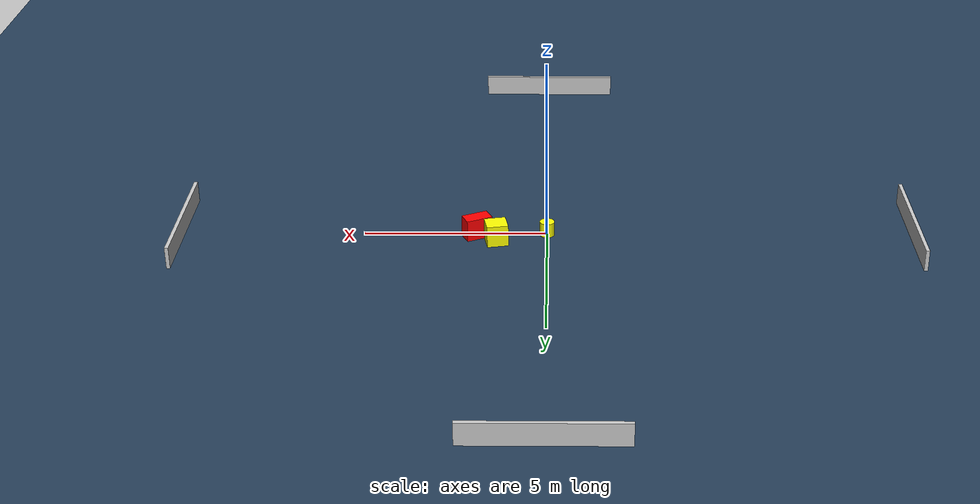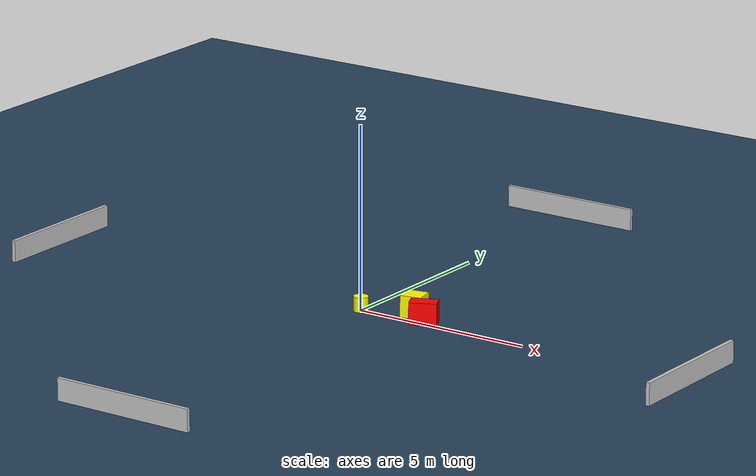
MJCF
<?xml version="1.0" ?>
<mujoco model="generated_environment">
  <option timestep="0.01" integrator="RK4" cone="elliptic"/>
  <default>
    <geom density="1"/>
  </default>
  <asset>
    <texture builtin="gradient" height="3072" name="skybox" rgb1="0.3 0.5 0.7" rgb2="0 0 0" type="skybox" width="512"/>
    <texture builtin="checker" height="300" name="groundplane" rgb1="0.2 0.3 0.4" rgb2="0.1 0.2 0.3" type="2d" width="300"/>
    <material name="groundplane" reflectance="0.2" texrepeat="5 5" texture="groundplane"/>
  </asset>
  <worldbody>
    <light dir="0 0 -1" directional="true" pos="0 0 1.5"/>
    <geom condim="3" friction="0.5 0.005 0.001" material="groundplane" name="floor" pos="0 0 0" size="0 0 0.05" type="plane"/>
    <body name="walls">
      <geom name="wall_1" condim="4" pos="-10.0 0.0 0.3" rgba="0.800000011920929 0.800000011920929 0.800000011920929 1.0" size="0.05 2.0 0.3" type="box"/>
      <geom name="wall_2" condim="4" pos="10.0 0.0 0.3" rgba="0.800000011920929 0.800000011920929 0.800000011920929 1.0" size="0.05 2.0 0.3" type="box"/>
      <geom name="wall_3" condim="4" pos="0.0 -10.0 0.3" rgba="0.800000011920929 0.800000011920929 0.800000011920929 1.0" size="2.0 0.05 0.3" type="box"/>
      <geom name="wall_4" condim="4" pos="0.0 10.0 0.3" rgba="0.800000011920929 0.800000011920929 0.800000011920929 1.0" size="2.0 0.05 0.3" type="box"/>
    </body>
    <body name="robot">
      <joint name="joint_x" type="slide" pos="0 0 0" axis="1 0 0"/>
      <joint name="joint_y" type="slide" pos="0 0 0" axis="0 1 0"/>
      <geom name="robot" type="cylinder" pos="0.0 0.0 0.2" size="0.2 0.2 0.0" mass="5.0" friction="1.0 0.005 0.0001" condim="4" rgba="1.0 1.0 0.0 1.0"/>
    </body>
    <body name="obstacle_1_movable">
      <geom name="obstacle_1_movable" condim="4" pos="1.376774614206817 0.44828900350157563 0.3" euler="0 0 280.8811278422601" friction="0.0 0.005 0.001" rgba="1.0 1.0 0.0 1.0" size="0.2713195076409368 0.2901917041281088 0.3" type="box" mass="0.1"/>
      <joint type="free"/>
    </body>
    <body name="obstacle_2_static">
      <geom name="obstacle_2_static" condim="4" pos="1.9147680766835478 0.09373825615493368 0.3" euler="0 0 205.4875551362305" friction="0.0 0.005 0.001" rgba="1.0 0.0 0.0 1.0" size="0.3673480609571993 0.20536778397372235 0.3" type="box"/>
    </body>
  </worldbody>
  <actuator>
    <motor name="actuator_x" joint="joint_x" gear="1" ctrlrange="-1 1"/>
    <motor name="actuator_y" joint="joint_y" gear="1" ctrlrange="-1 1"/>
  </actuator>
</mujoco>
